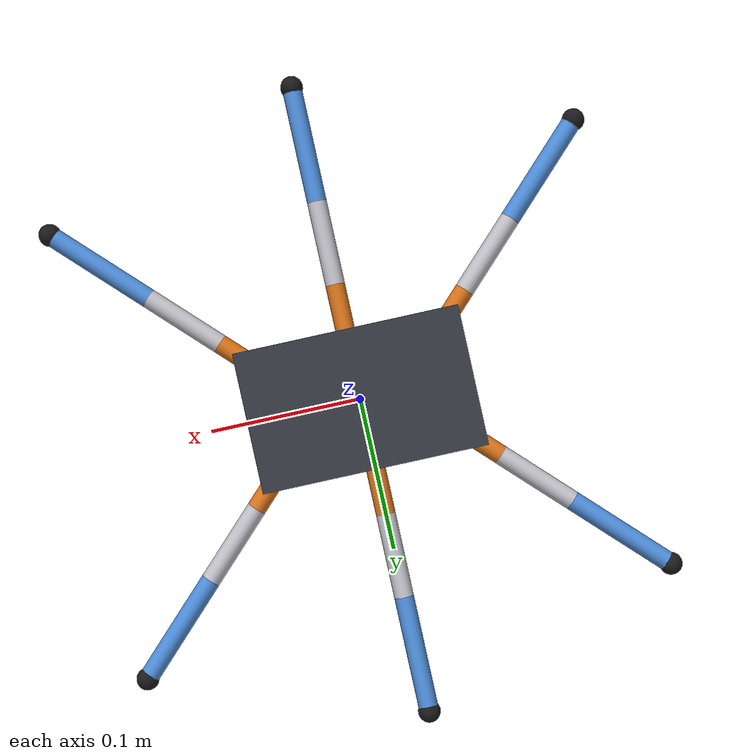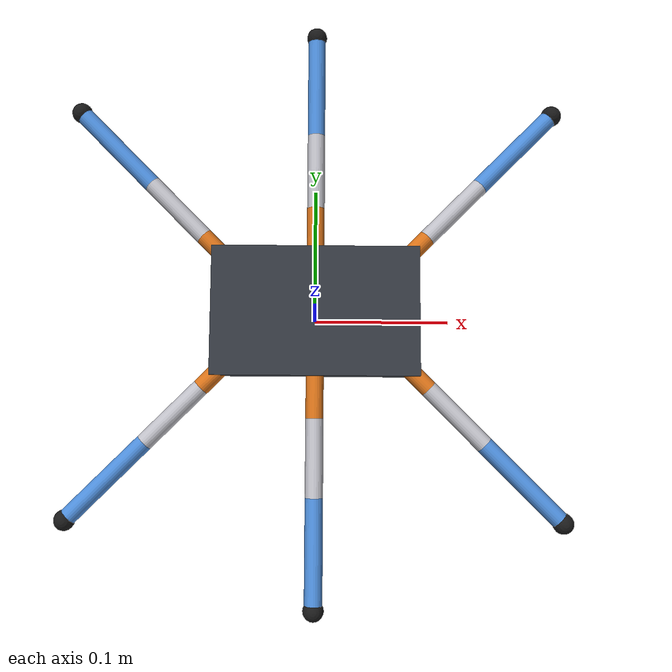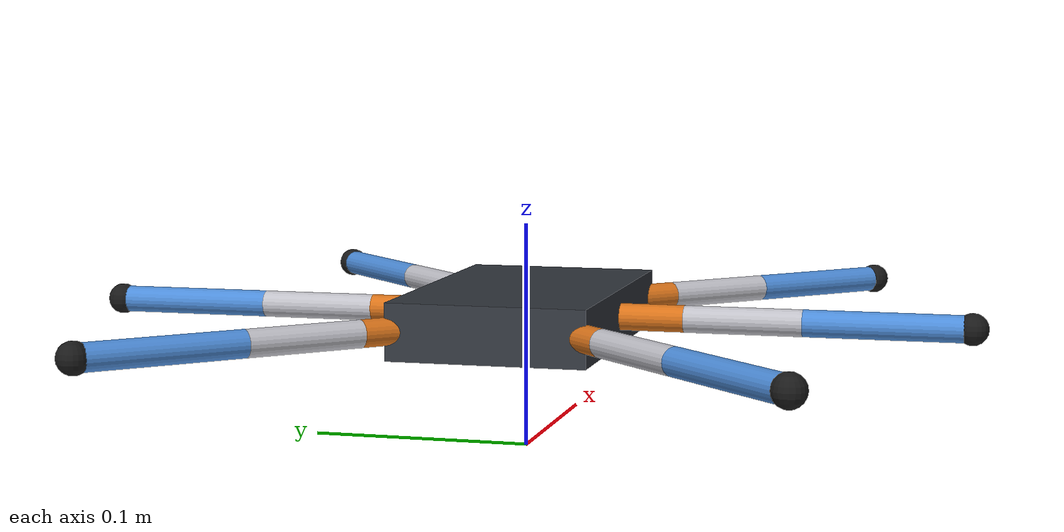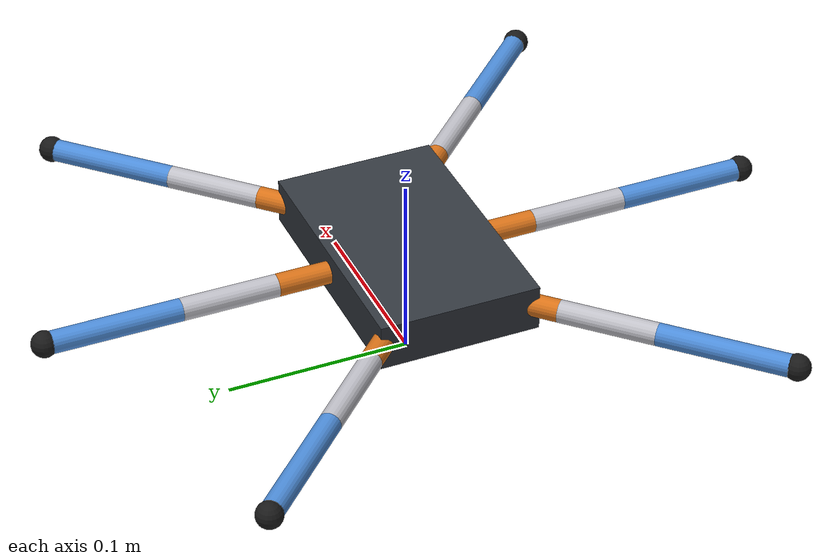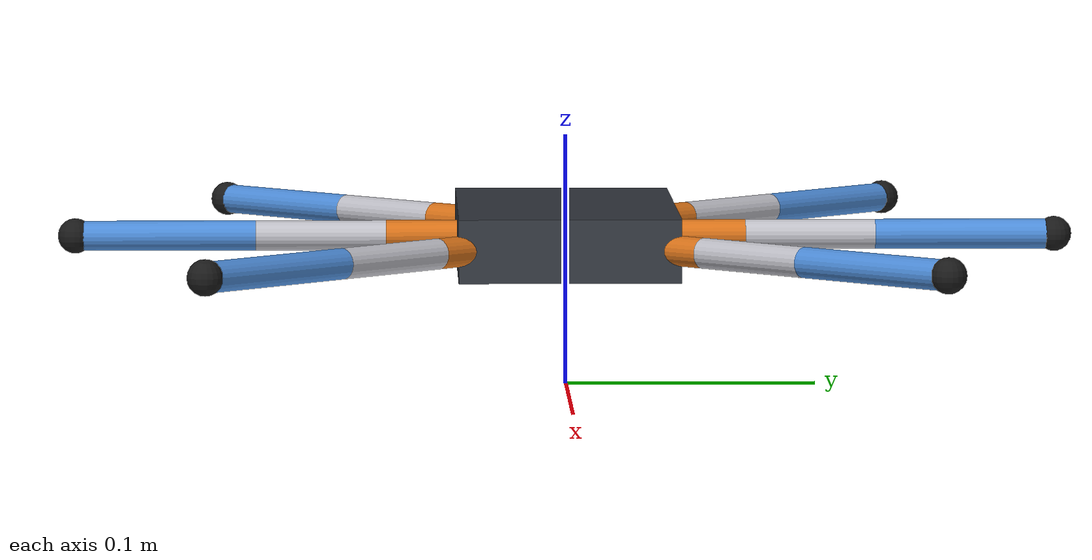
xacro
<?xml version="1.0"?>
<robot name="minihexa" xmlns:xacro="http://www.ros.org/wiki/xacro">

  <xacro:property name="coxa_len" value="0.0285"/>
  <xacro:property name="femur_len" value="0.052"/>
  <xacro:property name="tibia_len" value="0.072"/>
  <xacro:property name="hip_x" value="0.0565"/>
  <xacro:property name="hip_y_corner" value="0.0315"/>
  <xacro:property name="hip_y_mid" value="0.0434"/>
  <xacro:property name="stand_z" value="-0.0600"/>
  <xacro:property name="link_r" value="0.006"/>
  <xacro:property name="body_h" value="0.025"/>

  <material name="body"><color rgba="0.20 0.22 0.25 1"/></material>
  <material name="coxa"><color rgba="0.85 0.45 0.10 1"/></material>
  <material name="femur"><color rgba="0.75 0.75 0.78 1"/></material>
  <material name="tibia"><color rgba="0.30 0.55 0.85 1"/></material>
  <material name="foot"><color rgba="0.10 0.10 0.10 1"/></material>

  <!-- Ground projection of the body centre while standing, for later nav frames. -->
  <link name="base_footprint"/>
  <joint name="base_footprint_joint" type="fixed">
    <parent link="base_footprint"/>
    <child link="base_link"/>
    <origin xyz="0 0 ${-stand_z}" rpy="0 0 0"/>
  </joint>

  <link name="base_link">
    <visual>
      <geometry><box size="0.140 0.087 ${body_h}"/></geometry>
      <material name="body"/>
    </visual>
    <collision>
      <geometry><box size="0.140 0.087 ${body_h}"/></geometry>
    </collision>
    <inertial>
      <mass value="0.25"/>
      <inertia ixx="3.1e-4" iyy="4.8e-4" izz="7.7e-4" ixy="0" ixz="0" iyz="0"/>
    </inertial>
  </link>

  <link name="imu_link"/>
  <joint name="imu_joint" type="fixed">
    <parent link="base_link"/>
    <child link="imu_link"/>
    <origin xyz="0 0 0" rpy="0 0 0"/>
  </joint>

  <link name="sonar_link"/>
  <joint name="sonar_joint" type="fixed">
    <parent link="base_link"/>
    <child link="sonar_link"/>
    <origin xyz="0.080 0 0.020" rpy="0 0 0"/>
  </joint>

  <link name="camera_link"/>
  <joint name="camera_joint" type="fixed">
    <parent link="base_link"/>
    <child link="camera_link"/>
    <origin xyz="0.065 -0.005 ${0.110 - body_h/2}" rpy="0 0 0"/>
  </joint>
  <link name="camera_optical_frame"/>
  <joint name="camera_optical_joint" type="fixed">
    <parent link="camera_link"/>
    <child link="camera_optical_frame"/>
    <origin xyz="0 0 0" rpy="${-pi/2} 0 ${-pi/2}"/>
  </joint>

  <link name="laser_link"/>
  <joint name="laser_joint" type="fixed">
    <parent link="base_link"/>
    <child link="laser_link"/>
    <origin xyz="-0.005 0 ${0.145 - body_h/2}" rpy="0 0 0"/>
  </joint>

  <!-- A link drawn as a cylinder along its own +x, `bar_len` long. -->
  <xacro:macro name="bar" params="name bar_len mat mass">
    <link name="${name}">
      <visual>
        <origin xyz="${bar_len/2} 0 0" rpy="0 ${pi/2} 0"/>
        <geometry><cylinder radius="${link_r}" length="${bar_len}"/></geometry>
        <material name="${mat}"/>
      </visual>
      <collision>
        <origin xyz="${bar_len/2} 0 0" rpy="0 ${pi/2} 0"/>
        <geometry><cylinder radius="${link_r}" length="${bar_len}"/></geometry>
      </collision>
      <inertial>
        <origin xyz="${bar_len/2} 0 0" rpy="0 0 0"/>
        <mass value="${mass}"/>
        <inertia ixx="1e-6" iyy="${mass*bar_len*bar_len/12 + 1e-6}" izz="${mass*bar_len*bar_len/12 + 1e-6}" ixy="0" ixz="0" iyz="0"/>
      </inertial>
    </link>
  </xacro:macro>

  <xacro:macro name="leg" params="name x y yaw_deg">
    <xacro:property name="yaw" value="${yaw_deg*pi/180}"/>
    <joint name="${name}_coxa" type="revolute">
      <parent link="base_link"/>
      <child link="${name}_coxa_link"/>
      <origin xyz="${x} ${y} 0" rpy="0 0 ${yaw}"/>
      <axis xyz="0 0 1"/>
      <limit lower="${-pi/2}" upper="${pi/2}" effort="0.18" velocity="20.9"/>
    </joint>
    <xacro:bar name="${name}_coxa_link" bar_len="${coxa_len}" mat="coxa" mass="0.012"/>

    <joint name="${name}_femur" type="revolute">
      <parent link="${name}_coxa_link"/>
      <child link="${name}_femur_link"/>
      <origin xyz="${coxa_len} 0 0" rpy="0 0 0"/>
      <axis xyz="0 -1 0"/>
      <limit lower="${-pi/2}" upper="${pi/2}" effort="0.18" velocity="20.9"/>
    </joint>
    <xacro:bar name="${name}_femur_link" bar_len="${femur_len}" mat="femur" mass="0.015"/>

    <joint name="${name}_tibia" type="revolute">
      <parent link="${name}_femur_link"/>
      <child link="${name}_tibia_link"/>
      <origin xyz="${femur_len} 0 0" rpy="0 0 0"/>
      <axis xyz="0 -1 0"/>
      <limit lower="${-pi}" upper="0" effort="0.18" velocity="20.9"/>
    </joint>
    <xacro:bar name="${name}_tibia_link" bar_len="${tibia_len}" mat="tibia" mass="0.015"/>

    <joint name="${name}_foot_joint" type="fixed">
      <parent link="${name}_tibia_link"/>
      <child link="${name}_foot"/>
      <origin xyz="${tibia_len} 0 0" rpy="0 0 0"/>
    </joint>
    <link name="${name}_foot">
      <visual>
        <geometry><sphere radius="0.007"/></geometry>
        <material name="foot"/>
      </visual>
    </link>
  </xacro:macro>

  <!-- Order and positions as hexa_kin.cpp: rf rm rr lr lm lf. -->
  <xacro:leg name="rf" x="${hip_x}" y="${-hip_y_corner}" yaw_deg="-45"/>
  <xacro:leg name="rm" x="0.0" y="${-hip_y_mid}" yaw_deg="-90"/>
  <xacro:leg name="rr" x="${-hip_x}" y="${-hip_y_corner}" yaw_deg="-135"/>
  <xacro:leg name="lr" x="${-hip_x}" y="${hip_y_corner}" yaw_deg="135"/>
  <xacro:leg name="lm" x="0.0" y="${hip_y_mid}" yaw_deg="90"/>
  <xacro:leg name="lf" x="${hip_x}" y="${hip_y_corner}" yaw_deg="45"/>

</robot>
